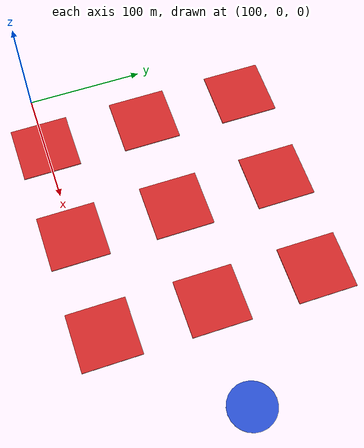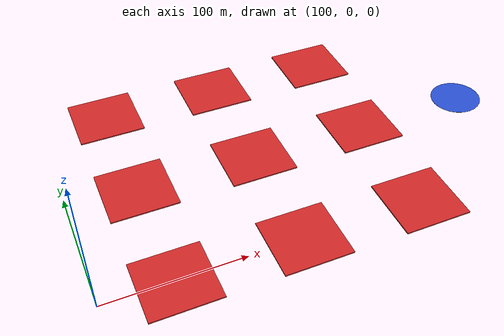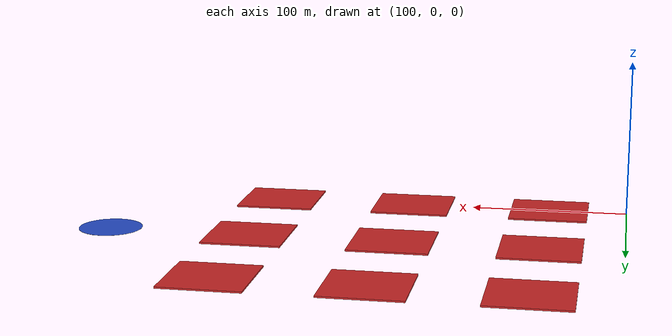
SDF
<sdf version="1.5">
 <world name="muin_obstacle">
  <include><uri>model://sun</uri></include>
  <spherical_coordinates>
   <surface_model>EARTH_WGS84</surface_model>
   <latitude_deg>47.333439</latitude_deg>
   <longitude_deg>8.547097</longitude_deg>
   <elevation>1.7</elevation>
  </spherical_coordinates>
  <physics name="default_physics" default="0" type="ode">
   <gravity>0 0 -9.8066</gravity>
   <ode>
    <solver>
     <type>quick</type>
     <iters>10</iters>
     <sor>1.3</sor>
     <use_dynamic_moi_rescaling>0</use_dynamic_moi_rescaling>
    </solver>
    <constraints>
     <cfm>0</cfm>
     <erp>0.2</erp>
     <contact_max_correcting_vel>100</contact_max_correcting_vel>
     <contact_surface_layer>0.001</contact_surface_layer>
    </constraints>
   </ode>
   <max_step_size>0.004</max_step_size>
   <real_time_factor>1</real_time_factor>
   <real_time_update_rate>250</real_time_update_rate>
   <magnetic_field>6.0e-6 2.3e-5 -4.2e-5</magnetic_field>
  </physics>
  <include><name>rect area 1</name><uri>model://rect_area</uri><pose>150 0 0.1 0 0 0</pose></include>
  <include><name>rect area 2</name><uri>model://rect_area</uri><pose>150 90 0.1 0 0 0</pose></include>
  <include><name>rect area 3</name><uri>model://rect_area</uri><pose>150 180 0.1 0 0 0</pose></include>
  <include><name>rect area 4</name><uri>model://rect_area</uri><pose>240 0 0.1 0 0 0</pose></include>
  <include><name>rect area 5</name><uri>model://rect_area</uri><pose>240 90 0.1 0 0 0</pose></include>
  <include><name>rect area 6</name><uri>model://rect_area</uri><pose>240 180 0.1 0 0 0</pose></include>
  <include><name>rect area 7</name><uri>model://rect_area</uri><pose>330 0 0.1 0 0 0</pose></include>
  <include><name>rect area 8</name><uri>model://rect_area</uri><pose>330 90 0.1 0 0 0</pose></include>
  <include><name>rect area 9</name><uri>model://rect_area</uri><pose>330 180 0.1 0 0 0</pose></include>
  <include><name>cylinder area 9</name><uri>model://cylinder_area</uri><pose>420 90 0.1 0 0 0</pose></include>
 </world>
</sdf>

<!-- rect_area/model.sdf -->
<sdf version="1.5">
  <model name="rect area">
    <pose>0 0 300 0 0 0</pose>
    <static>false</static>
    <link name="link">
      <inertial>
        <mass>2000</mass>
        <inertia>
          <ixx>66666666.666666</ixx>
          <ixy>0</ixy>
          <ixz>0</ixz>
          <iyy>66666666.666666</iyy>
          <iyz>0</iyz>
          <izz>13333333.333333</izz>
        </inertia>
      </inertial>
      <collision name="collision">
        <geometry>
          <box>
              <size>50 50 1</size>
          </box>
        </geometry>
      </collision>
      <visual name="visual">
        <geometry>
          <box>
            <size>50 50 1</size>
          </box>
	</geometry>
	<material>
          <script>
            <name>Gazebo/Red</name>
            <uri>file://media/materials/scripts/gazebo.material</uri>
          </script>
        </material>
      </visual>
    </link>
  </model>
</sdf>

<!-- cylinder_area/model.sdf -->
<sdf version="1.5">
  <model name="cylinder area">
    <pose>0 0 300 0 0 0</pose>
    <static>false</static>
    <link name="link">
      <inertial>
        <mass>2000</mass>
        <inertia>
          <ixx>66666666.666666</ixx>
          <ixy>0</ixy>
          <ixz>0</ixz>
          <iyy>66666666.666666</iyy>
          <iyz>0</iyz>
          <izz>13333333.333333</izz>
        </inertia>
      </inertial>
      <collision name="collision">
        <geometry>
          <cylinder>
              <radius>20</radius>
              <length>0.1</length>
          </cylinder>
        </geometry>
      </collision>
      <visual name="visual">
        <geometry>
          <cylinder>
              <radius>20</radius>
              <length>0.1</length>
          </cylinder>
        </geometry>
        <material>
          <script>
            <name>Gazebo/Blue</name>
            <uri>file://media/materials/scripts/gazebo.material</uri>
          </script>
        </material>
      </visual>
    </link>
  </model>
</sdf>
